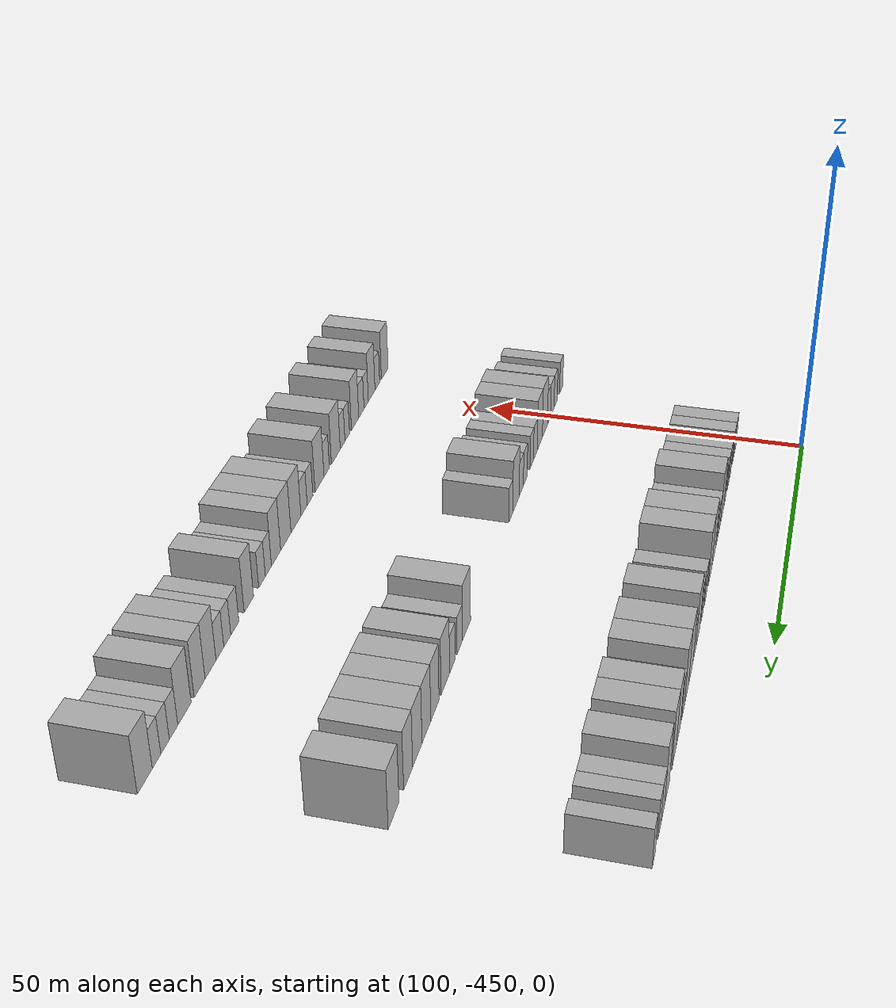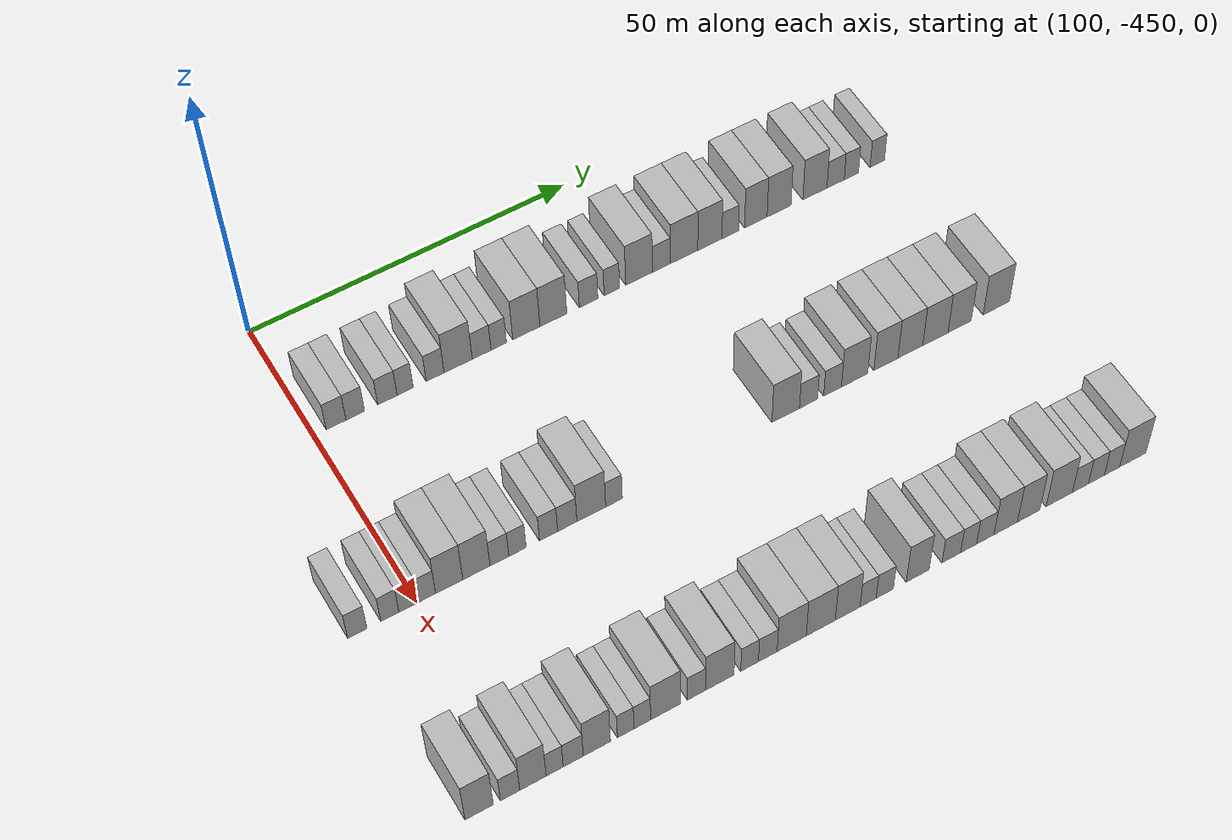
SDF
<sdf version="1.6">
 <world name="default">
  <model name="building_667">
   <static>1</static>
   <pose>115.0000 -446.6133 0 0.000000 0.000000 0.000000</pose>
   <link name="link">
    <pose>0 0 3.00 0 0 0</pose>
    <collision name="collision"><geometry><box><size>10.0000 2.9909 6.0000</size></box></geometry></collision>
    <visual name="visual">
     <cast_shadows>0</cast_shadows>
     <geometry><box><size>10.0000 2.9909 6.0000</size></box></geometry>
     <material>
      <script>
       <uri>model://HANNAS_wall/materials/scripts</uri>
       <uri>model://HANNAS_wall/materials/textures</uri>
       <name>vrc/HANNAS_wall</name>
      </script>
     </material>
    </visual>
   </link>
  </model>
  <model name="building_668">
   <static>1</static>
   <pose>115.0000 -443.7069 0 0.000000 0.000000 0.000000</pose>
   <link name="link">
    <pose>0 0 3.00 0 0 0</pose>
    <collision name="collision"><geometry><box><size>10.0000 2.8218 6.0000</size></box></geometry></collision>
    <visual name="visual">
     <cast_shadows>0</cast_shadows>
     <geometry><box><size>10.0000 2.8218 6.0000</size></box></geometry>
     <material>
      <script>
       <uri>model://HANNAS_wall/materials/scripts</uri>
       <uri>model://HANNAS_wall/materials/textures</uri>
       <name>vrc/HANNAS_wall</name>
      </script>
     </material>
    </visual>
   </link>
  </model>
  <model name="building_669">
   <static>1</static>
   <pose>115.0000 -438.8084 0 0.000000 0.000000 0.000000</pose>
   <link name="link">
    <pose>0 0 3.00 0 0 0</pose>
    <collision name="collision"><geometry><box><size>10.0000 2.9753 6.0000</size></box></geometry></collision>
    <visual name="visual">
     <cast_shadows>0</cast_shadows>
     <geometry><box><size>10.0000 2.9753 6.0000</size></box></geometry>
     <material>
      <script>
       <uri>model://HANNAS_wall/materials/scripts</uri>
       <uri>model://HANNAS_wall/materials/textures</uri>
       <name>vrc/HANNAS_wall</name>
      </script>
     </material>
    </visual>
   </link>
  </model>
  <model name="building_670">
   <static>1</static>
   <pose>115.0000 -436.0837 0 0.000000 0.000000 0.000000</pose>
   <link name="link">
    <pose>0 0 3.00 0 0 0</pose>
    <collision name="collision"><geometry><box><size>10.0000 2.4739 6.0000</size></box></geometry></collision>
    <visual name="visual">
     <cast_shadows>0</cast_shadows>
     <geometry><box><size>10.0000 2.4739 6.0000</size></box></geometry>
     <material>
      <script>
       <uri>model://HANNAS_wall/materials/scripts</uri>
       <uri>model://HANNAS_wall/materials/textures</uri>
       <name>vrc/HANNAS_wall</name>
      </script>
     </material>
    </visual>
   </link>
  </model>
  <model name="building_671">
   <static>1</static>
   <pose>115.0000 -431.4646 0 0.000000 0.000000 0.000000</pose>
   <link name="link">
    <pose>0 0 3.00 0 0 0</pose>
    <collision name="collision"><geometry><box><size>10.0000 2.7643 6.0000</size></box></geometry></collision>
    <visual name="visual">
     <cast_shadows>0</cast_shadows>
     <geometry><box><size>10.0000 2.7643 6.0000</size></box></geometry>
     <material>
      <script>
       <uri>model://HANNAS_wall/materials/scripts</uri>
       <uri>model://HANNAS_wall/materials/textures</uri>
       <name>vrc/HANNAS_wall</name>
      </script>
     </material>
    </visual>
   </link>
  </model>
  <model name="building_672">
   <static>1</static>
   <pose>115.0000 -427.8878 0 0.000000 0.000000 0.000000</pose>
   <link name="link">
    <pose>0 0 4.50 0 0 0</pose>
    <collision name="collision"><geometry><box><size>10.0000 4.3893 9.0000</size></box></geometry></collision>
    <visual name="visual">
     <cast_shadows>0</cast_shadows>
     <geometry><box><size>10.0000 4.3893 9.0000</size></box></geometry>
     <material>
      <script>
       <uri>model://HANNAS_wall/materials/scripts</uri>
       <uri>model://HANNAS_wall/materials/textures</uri>
       <name>vrc/HANNAS_wall</name>
      </script>
     </material>
    </visual>
   </link>
  </model>
  <model name="building_673">
   <static>1</static>
   <pose>115.0000 -424.2238 0 0.000000 0.000000 0.000000</pose>
   <link name="link">
    <pose>0 0 3.00 0 0 0</pose>
    <collision name="collision"><geometry><box><size>10.0000 2.9389 6.0000</size></box></geometry></collision>
    <visual name="visual">
     <cast_shadows>0</cast_shadows>
     <geometry><box><size>10.0000 2.9389 6.0000</size></box></geometry>
     <material>
      <script>
       <uri>model://HANNAS_wall/materials/scripts</uri>
       <uri>model://HANNAS_wall/materials/textures</uri>
       <name>vrc/HANNAS_wall</name>
      </script>
     </material>
    </visual>
   </link>
  </model>
  <model name="building_674">
   <static>1</static>
   <pose>115.0000 -421.5480 0 0.000000 0.000000 0.000000</pose>
   <link name="link">
    <pose>0 0 3.00 0 0 0</pose>
    <collision name="collision"><geometry><box><size>10.0000 2.4127 6.0000</size></box></geometry></collision>
    <visual name="visual">
     <cast_shadows>0</cast_shadows>
     <geometry><box><size>10.0000 2.4127 6.0000</size></box></geometry>
     <material>
      <script>
       <uri>model://HANNAS_wall/materials/scripts</uri>
       <uri>model://HANNAS_wall/materials/textures</uri>
       <name>vrc/HANNAS_wall</name>
      </script>
     </material>
    </visual>
   </link>
  </model>
  <model name="building_675">
   <static>1</static>
   <pose>115.0000 -417.1871 0 0.000000 0.000000 0.000000</pose>
   <link name="link">
    <pose>0 0 4.50 0 0 0</pose>
    <collision name="collision"><geometry><box><size>10.0000 4.3090 9.0000</size></box></geometry></collision>
    <visual name="visual">
     <cast_shadows>0</cast_shadows>
     <geometry><box><size>10.0000 4.3090 9.0000</size></box></geometry>
     <material>
      <script>
       <uri>model://HANNAS_wall/materials/scripts</uri>
       <uri>model://HANNAS_wall/materials/textures</uri>
       <name>vrc/HANNAS_wall</name>
      </script>
     </material>
    </visual>
   </link>
  </model>
  <model name="building_676">
   <static>1</static>
   <pose>115.0000 -412.8938 0 0.000000 0.000000 0.000000</pose>
   <link name="link">
    <pose>0 0 4.50 0 0 0</pose>
    <collision name="collision"><geometry><box><size>10.0000 4.2776 9.0000</size></box></geometry></collision>
    <visual name="visual">
     <cast_shadows>0</cast_shadows>
     <geometry><box><size>10.0000 4.2776 9.0000</size></box></geometry>
     <material>
      <script>
       <uri>model://HANNAS_wall/materials/scripts</uri>
       <uri>model://HANNAS_wall/materials/textures</uri>
       <name>vrc/HANNAS_wall</name>
      </script>
     </material>
    </visual>
   </link>
  </model>
  <model name="building_677">
   <static>1</static>
   <pose>115.0000 -407.2582 0 0.000000 0.000000 0.000000</pose>
   <link name="link">
    <pose>0 0 3.00 0 0 0</pose>
    <collision name="collision"><geometry><box><size>10.0000 2.9936 6.0000</size></box></geometry></collision>
    <visual name="visual">
     <cast_shadows>0</cast_shadows>
     <geometry><box><size>10.0000 2.9936 6.0000</size></box></geometry>
     <material>
      <script>
       <uri>model://HANNAS_wall/materials/scripts</uri>
       <uri>model://HANNAS_wall/materials/textures</uri>
       <name>vrc/HANNAS_wall</name>
      </script>
     </material>
    </visual>
   </link>
  </model>
  <model name="building_678">
   <static>1</static>
   <pose>115.0000 -403.5093 0 0.000000 0.000000 0.000000</pose>
   <link name="link">
    <pose>0 0 3.00 0 0 0</pose>
    <collision name="collision"><geometry><box><size>10.0000 2.5041 6.0000</size></box></geometry></collision>
    <visual name="visual">
     <cast_shadows>0</cast_shadows>
     <geometry><box><size>10.0000 2.5041 6.0000</size></box></geometry>
     <material>
      <script>
       <uri>model://HANNAS_wall/materials/scripts</uri>
       <uri>model://HANNAS_wall/materials/textures</uri>
       <name>vrc/HANNAS_wall</name>
      </script>
     </material>
    </visual>
   </link>
  </model>
  <model name="building_679">
   <static>1</static>
   <pose>115.0000 -399.0674 0 0.000000 0.000000 0.000000</pose>
   <link name="link">
    <pose>0 0 4.50 0 0 0</pose>
    <collision name="collision"><geometry><box><size>10.0000 4.3798 9.0000</size></box></geometry></collision>
    <visual name="visual">
     <cast_shadows>0</cast_shadows>
     <geometry><box><size>10.0000 4.3798 9.0000</size></box></geometry>
     <material>
      <script>
       <uri>model://HANNAS_wall/materials/scripts</uri>
       <uri>model://HANNAS_wall/materials/textures</uri>
       <name>vrc/HANNAS_wall</name>
      </script>
     </material>
    </visual>
   </link>
  </model>
  <model name="building_680">
   <static>1</static>
   <pose>115.0000 -395.4163 0 0.000000 0.000000 0.000000</pose>
   <link name="link">
    <pose>0 0 3.00 0 0 0</pose>
    <collision name="collision"><geometry><box><size>10.0000 2.9223 6.0000</size></box></geometry></collision>
    <visual name="visual">
     <cast_shadows>0</cast_shadows>
     <geometry><box><size>10.0000 2.9223 6.0000</size></box></geometry>
     <material>
      <script>
       <uri>model://HANNAS_wall/materials/scripts</uri>
       <uri>model://HANNAS_wall/materials/textures</uri>
       <name>vrc/HANNAS_wall</name>
      </script>
     </material>
    </visual>
   </link>
  </model>
  <model name="building_681">
   <static>1</static>
   <pose>115.0000 -391.7129 0 0.000000 0.000000 0.000000</pose>
   <link name="link">
    <pose>0 0 4.50 0 0 0</pose>
    <collision name="collision"><geometry><box><size>10.0000 4.4847 9.0000</size></box></geometry></collision>
    <visual name="visual">
     <cast_shadows>0</cast_shadows>
     <geometry><box><size>10.0000 4.4847 9.0000</size></box></geometry>
     <material>
      <script>
       <uri>model://HANNAS_wall/materials/scripts</uri>
       <uri>model://HANNAS_wall/materials/textures</uri>
       <name>vrc/HANNAS_wall</name>
      </script>
     </material>
    </visual>
   </link>
  </model>
  <model name="building_682">
   <static>1</static>
   <pose>115.0000 -387.4580 0 0.000000 0.000000 0.000000</pose>
   <link name="link">
    <pose>0 0 4.50 0 0 0</pose>
    <collision name="collision"><geometry><box><size>10.0000 4.0252 9.0000</size></box></geometry></collision>
    <visual name="visual">
     <cast_shadows>0</cast_shadows>
     <geometry><box><size>10.0000 4.0252 9.0000</size></box></geometry>
     <material>
      <script>
       <uri>model://HANNAS_wall/materials/scripts</uri>
       <uri>model://HANNAS_wall/materials/textures</uri>
       <name>vrc/HANNAS_wall</name>
      </script>
     </material>
    </visual>
   </link>
  </model>
  <model name="building_683">
   <static>1</static>
   <pose>115.0000 -384.0643 0 0.000000 0.000000 0.000000</pose>
   <link name="link">
    <pose>0 0 3.00 0 0 0</pose>
    <collision name="collision"><geometry><box><size>10.0000 2.7622 6.0000</size></box></geometry></collision>
    <visual name="visual">
     <cast_shadows>0</cast_shadows>
     <geometry><box><size>10.0000 2.7622 6.0000</size></box></geometry>
     <material>
      <script>
       <uri>model://HANNAS_wall/materials/scripts</uri>
       <uri>model://HANNAS_wall/materials/textures</uri>
       <name>vrc/HANNAS_wall</name>
      </script>
     </material>
    </visual>
   </link>
  </model>
  <model name="building_684">
   <static>1</static>
   <pose>115.0000 -379.7907 0 0.000000 0.000000 0.000000</pose>
   <link name="link">
    <pose>0 0 4.50 0 0 0</pose>
    <collision name="collision"><geometry><box><size>10.0000 3.7850 9.0000</size></box></geometry></collision>
    <visual name="visual">
     <cast_shadows>0</cast_shadows>
     <geometry><box><size>10.0000 3.7850 9.0000</size></box></geometry>
     <material>
      <script>
       <uri>model://HANNAS_wall/materials/scripts</uri>
       <uri>model://HANNAS_wall/materials/textures</uri>
       <name>vrc/HANNAS_wall</name>
      </script>
     </material>
    </visual>
   </link>
  </model>
  <model name="building_685">
   <static>1</static>
   <pose>115.0000 -375.8814 0 0.000000 0.000000 0.000000</pose>
   <link name="link">
    <pose>0 0 4.50 0 0 0</pose>
    <collision name="collision"><geometry><box><size>10.0000 4.0336 9.0000</size></box></geometry></collision>
    <visual name="visual">
     <cast_shadows>0</cast_shadows>
     <geometry><box><size>10.0000 4.0336 9.0000</size></box></geometry>
     <material>
      <script>
       <uri>model://HANNAS_wall/materials/scripts</uri>
       <uri>model://HANNAS_wall/materials/textures</uri>
       <name>vrc/HANNAS_wall</name>
      </script>
     </material>
    </visual>
   </link>
  </model>
  <model name="building_686">
   <static>1</static>
   <pose>115.0000 -369.8110 0 0.000000 0.000000 0.000000</pose>
   <link name="link">
    <pose>0 0 4.50 0 0 0</pose>
    <collision name="collision"><geometry><box><size>10.0000 4.1072 9.0000</size></box></geometry></collision>
    <visual name="visual">
     <cast_shadows>0</cast_shadows>
     <geometry><box><size>10.0000 4.1072 9.0000</size></box></geometry>
     <material>
      <script>
       <uri>model://HANNAS_wall/materials/scripts</uri>
       <uri>model://HANNAS_wall/materials/textures</uri>
       <name>vrc/HANNAS_wall</name>
      </script>
     </material>
    </visual>
   </link>
  </model>
  <model name="building_687">
   <static>1</static>
   <pose>115.0000 -366.2818 0 0.000000 0.000000 0.000000</pose>
   <link name="link">
    <pose>0 0 3.00 0 0 0</pose>
    <collision name="collision"><geometry><box><size>10.0000 2.9512 6.0000</size></box></geometry></collision>
    <visual name="visual">
     <cast_shadows>0</cast_shadows>
     <geometry><box><size>10.0000 2.9512 6.0000</size></box></geometry>
     <material>
      <script>
       <uri>model://HANNAS_wall/materials/scripts</uri>
       <uri>model://HANNAS_wall/materials/textures</uri>
       <name>vrc/HANNAS_wall</name>
      </script>
     </material>
    </visual>
   </link>
  </model>
  <model name="building_688">
   <static>1</static>
   <pose>115.0000 -363.5813 0 0.000000 0.000000 0.000000</pose>
   <link name="link">
    <pose>0 0 3.00 0 0 0</pose>
    <collision name="collision"><geometry><box><size>10.0000 2.4497 6.0000</size></box></geometry></collision>
    <visual name="visual">
     <cast_shadows>0</cast_shadows>
     <geometry><box><size>10.0000 2.4497 6.0000</size></box></geometry>
     <material>
      <script>
       <uri>model://HANNAS_wall/materials/scripts</uri>
       <uri>model://HANNAS_wall/materials/textures</uri>
       <name>vrc/HANNAS_wall</name>
      </script>
     </material>
    </visual>
   </link>
  </model>
  <model name="building_689">
   <static>1</static>
   <pose>115.0000 -359.1037 0 0.000000 0.000000 0.000000</pose>
   <link name="link">
    <pose>0 0 3.00 0 0 0</pose>
    <collision name="collision"><geometry><box><size>10.0000 2.5055 6.0000</size></box></geometry></collision>
    <visual name="visual">
     <cast_shadows>0</cast_shadows>
     <geometry><box><size>10.0000 2.5055 6.0000</size></box></geometry>
     <material>
      <script>
       <uri>model://HANNAS_wall/materials/scripts</uri>
       <uri>model://HANNAS_wall/materials/textures</uri>
       <name>vrc/HANNAS_wall</name>
      </script>
     </material>
    </visual>
   </link>
  </model>
  <model name="building_877">
   <static>1</static>
   <pose>145.0000 -458.6120 0 0.000000 0.000000 0.000000</pose>
   <link name="link">
    <pose>0 0 3.00 0 0 0</pose>
    <collision name="collision"><geometry><box><size>10.0000 2.7760 6.0000</size></box></geometry></collision>
    <visual name="visual">
     <cast_shadows>0</cast_shadows>
     <geometry><box><size>10.0000 2.7760 6.0000</size></box></geometry>
     <material>
      <script>
       <uri>model://HANNAS_wall/materials/scripts</uri>
       <uri>model://HANNAS_wall/materials/textures</uri>
       <name>vrc/HANNAS_wall</name>
      </script>
     </material>
    </visual>
   </link>
  </model>
  <model name="building_878">
   <static>1</static>
   <pose>145.0000 -453.9033 0 0.000000 0.000000 0.000000</pose>
   <link name="link">
    <pose>0 0 3.00 0 0 0</pose>
    <collision name="collision"><geometry><box><size>10.0000 2.6414 6.0000</size></box></geometry></collision>
    <visual name="visual">
     <cast_shadows>0</cast_shadows>
     <geometry><box><size>10.0000 2.6414 6.0000</size></box></geometry>
     <material>
      <script>
       <uri>model://HANNAS_wall/materials/scripts</uri>
       <uri>model://HANNAS_wall/materials/textures</uri>
       <name>vrc/HANNAS_wall</name>
      </script>
     </material>
    </visual>
   </link>
  </model>
  <model name="building_879">
   <static>1</static>
   <pose>145.0000 -451.1702 0 0.000000 0.000000 0.000000</pose>
   <link name="link">
    <pose>0 0 3.00 0 0 0</pose>
    <collision name="collision"><geometry><box><size>10.0000 2.8250 6.0000</size></box></geometry></collision>
    <visual name="visual">
     <cast_shadows>0</cast_shadows>
     <geometry><box><size>10.0000 2.8250 6.0000</size></box></geometry>
     <material>
      <script>
       <uri>model://HANNAS_wall/materials/scripts</uri>
       <uri>model://HANNAS_wall/materials/textures</uri>
       <name>vrc/HANNAS_wall</name>
      </script>
     </material>
    </visual>
   </link>
  </model>
  <model name="building_880">
   <static>1</static>
   <pose>145.0000 -448.4952 0 0.000000 0.000000 0.000000</pose>
   <link name="link">
    <pose>0 0 3.00 0 0 0</pose>
    <collision name="collision"><geometry><box><size>10.0000 2.5249 6.0000</size></box></geometry></collision>
    <visual name="visual">
     <cast_shadows>0</cast_shadows>
     <geometry><box><size>10.0000 2.5249 6.0000</size></box></geometry>
     <material>
      <script>
       <uri>model://HANNAS_wall/materials/scripts</uri>
       <uri>model://HANNAS_wall/materials/textures</uri>
       <name>vrc/HANNAS_wall</name>
      </script>
     </material>
    </visual>
   </link>
  </model>
  <model name="building_881">
   <static>1</static>
   <pose>145.0000 -445.2301 0 0.000000 0.000000 0.000000</pose>
   <link name="link">
    <pose>0 0 4.50 0 0 0</pose>
    <collision name="collision"><geometry><box><size>10.0000 4.0053 9.0000</size></box></geometry></collision>
    <visual name="visual">
     <cast_shadows>0</cast_shadows>
     <geometry><box><size>10.0000 4.0053 9.0000</size></box></geometry>
     <material>
      <script>
       <uri>model://HANNAS_wall/materials/scripts</uri>
       <uri>model://HANNAS_wall/materials/textures</uri>
       <name>vrc/HANNAS_wall</name>
      </script>
     </material>
    </visual>
   </link>
  </model>
  <model name="building_882">
   <static>1</static>
   <pose>145.0000 -441.2121 0 0.000000 0.000000 0.000000</pose>
   <link name="link">
    <pose>0 0 4.50 0 0 0</pose>
    <collision name="collision"><geometry><box><size>10.0000 4.0306 9.0000</size></box></geometry></collision>
    <visual name="visual">
     <cast_shadows>0</cast_shadows>
     <geometry><box><size>10.0000 4.0306 9.0000</size></box></geometry>
     <material>
      <script>
       <uri>model://HANNAS_wall/materials/scripts</uri>
       <uri>model://HANNAS_wall/materials/textures</uri>
       <name>vrc/HANNAS_wall</name>
      </script>
     </material>
    </visual>
   </link>
  </model>
  <model name="building_883">
   <static>1</static>
   <pose>145.0000 -437.7953 0 0.000000 0.000000 0.000000</pose>
   <link name="link">
    <pose>0 0 3.00 0 0 0</pose>
    <collision name="collision"><geometry><box><size>10.0000 2.8030 6.0000</size></box></geometry></collision>
    <visual name="visual">
     <cast_shadows>0</cast_shadows>
     <geometry><box><size>10.0000 2.8030 6.0000</size></box></geometry>
     <material>
      <script>
       <uri>model://HANNAS_wall/materials/scripts</uri>
       <uri>model://HANNAS_wall/materials/textures</uri>
       <name>vrc/HANNAS_wall</name>
      </script>
     </material>
    </visual>
   </link>
  </model>
  <model name="building_884">
   <static>1</static>
   <pose>145.0000 -435.1029 0 0.000000 0.000000 0.000000</pose>
   <link name="link">
    <pose>0 0 3.00 0 0 0</pose>
    <collision name="collision"><geometry><box><size>10.0000 2.5817 6.0000</size></box></geometry></collision>
    <visual name="visual">
     <cast_shadows>0</cast_shadows>
     <geometry><box><size>10.0000 2.5817 6.0000</size></box></geometry>
     <material>
      <script>
       <uri>model://HANNAS_wall/materials/scripts</uri>
       <uri>model://HANNAS_wall/materials/textures</uri>
       <name>vrc/HANNAS_wall</name>
      </script>
     </material>
    </visual>
   </link>
  </model>
  <model name="building_885">
   <static>1</static>
   <pose>145.0000 -430.4379 0 0.000000 0.000000 0.000000</pose>
   <link name="link">
    <pose>0 0 3.00 0 0 0</pose>
    <collision name="collision"><geometry><box><size>10.0000 2.7483 6.0000</size></box></geometry></collision>
    <visual name="visual">
     <cast_shadows>0</cast_shadows>
     <geometry><box><size>10.0000 2.7483 6.0000</size></box></geometry>
     <material>
      <script>
       <uri>model://HANNAS_wall/materials/scripts</uri>
       <uri>model://HANNAS_wall/materials/textures</uri>
       <name>vrc/HANNAS_wall</name>
      </script>
     </material>
    </visual>
   </link>
  </model>
  <model name="building_886">
   <static>1</static>
   <pose>145.0000 -427.6041 0 0.000000 0.000000 0.000000</pose>
   <link name="link">
    <pose>0 0 3.00 0 0 0</pose>
    <collision name="collision"><geometry><box><size>10.0000 2.9193 6.0000</size></box></geometry></collision>
    <visual name="visual">
     <cast_shadows>0</cast_shadows>
     <geometry><box><size>10.0000 2.9193 6.0000</size></box></geometry>
     <material>
      <script>
       <uri>model://HANNAS_wall/materials/scripts</uri>
       <uri>model://HANNAS_wall/materials/textures</uri>
       <name>vrc/HANNAS_wall</name>
      </script>
     </material>
    </visual>
   </link>
  </model>
  <model name="building_887">
   <static>1</static>
   <pose>145.0000 -423.9547 0 0.000000 0.000000 0.000000</pose>
   <link name="link">
    <pose>0 0 4.50 0 0 0</pose>
    <collision name="collision"><geometry><box><size>10.0000 4.3796 9.0000</size></box></geometry></collision>
    <visual name="visual">
     <cast_shadows>0</cast_shadows>
     <geometry><box><size>10.0000 4.3796 9.0000</size></box></geometry>
     <material>
      <script>
       <uri>model://HANNAS_wall/materials/scripts</uri>
       <uri>model://HANNAS_wall/materials/textures</uri>
       <name>vrc/HANNAS_wall</name>
      </script>
     </material>
    </visual>
   </link>
  </model>
  <model name="building_888">
   <static>1</static>
   <pose>145.0000 -420.4860 0 0.000000 0.000000 0.000000</pose>
   <link name="link">
    <pose>0 0 3.00 0 0 0</pose>
    <collision name="collision"><geometry><box><size>10.0000 2.5579 6.0000</size></box></geometry></collision>
    <visual name="visual">
     <cast_shadows>0</cast_shadows>
     <geometry><box><size>10.0000 2.5579 6.0000</size></box></geometry>
     <material>
      <script>
       <uri>model://HANNAS_wall/materials/scripts</uri>
       <uri>model://HANNAS_wall/materials/textures</uri>
       <name>vrc/HANNAS_wall</name>
      </script>
     </material>
    </visual>
   </link>
  </model>
  <model name="building_889">
   <static>1</static>
   <pose>145.0000 -393.5855 0 0.000000 0.000000 0.000000</pose>
   <link name="link">
    <pose>0 0 4.50 0 0 0</pose>
    <collision name="collision"><geometry><box><size>10.0000 4.4144 9.0000</size></box></geometry></collision>
    <visual name="visual">
     <cast_shadows>0</cast_shadows>
     <geometry><box><size>10.0000 4.4144 9.0000</size></box></geometry>
     <material>
      <script>
       <uri>model://HANNAS_wall/materials/scripts</uri>
       <uri>model://HANNAS_wall/materials/textures</uri>
       <name>vrc/HANNAS_wall</name>
      </script>
     </material>
    </visual>
   </link>
  </model>
  <model name="building_890">
   <static>1</static>
   <pose>145.0000 -389.9294 0 0.000000 0.000000 0.000000</pose>
   <link name="link">
    <pose>0 0 3.00 0 0 0</pose>
    <collision name="collision"><geometry><box><size>10.0000 2.8977 6.0000</size></box></geometry></collision>
    <visual name="visual">
     <cast_shadows>0</cast_shadows>
     <geometry><box><size>10.0000 2.8977 6.0000</size></box></geometry>
     <material>
      <script>
       <uri>model://HANNAS_wall/materials/scripts</uri>
       <uri>model://HANNAS_wall/materials/textures</uri>
       <name>vrc/HANNAS_wall</name>
      </script>
     </material>
    </visual>
   </link>
  </model>
  <model name="building_891">
   <static>1</static>
   <pose>145.0000 -386.0430 0 0.000000 0.000000 0.000000</pose>
   <link name="link">
    <pose>0 0 3.00 0 0 0</pose>
    <collision name="collision"><geometry><box><size>10.0000 2.8752 6.0000</size></box></geometry></collision>
    <visual name="visual">
     <cast_shadows>0</cast_shadows>
     <geometry><box><size>10.0000 2.8752 6.0000</size></box></geometry>
     <material>
      <script>
       <uri>model://HANNAS_wall/materials/scripts</uri>
       <uri>model://HANNAS_wall/materials/textures</uri>
       <name>vrc/HANNAS_wall</name>
      </script>
     </material>
    </visual>
   </link>
  </model>
  <model name="building_892">
   <static>1</static>
   <pose>145.0000 -382.4583 0 0.000000 0.000000 0.000000</pose>
   <link name="link">
    <pose>0 0 4.50 0 0 0</pose>
    <collision name="collision"><geometry><box><size>10.0000 4.2940 9.0000</size></box></geometry></collision>
    <visual name="visual">
     <cast_shadows>0</cast_shadows>
     <geometry><box><size>10.0000 4.2940 9.0000</size></box></geometry>
     <material>
      <script>
       <uri>model://HANNAS_wall/materials/scripts</uri>
       <uri>model://HANNAS_wall/materials/textures</uri>
       <name>vrc/HANNAS_wall</name>
      </script>
     </material>
    </visual>
   </link>
  </model>
  <model name="building_893">
   <static>1</static>
   <pose>145.0000 -377.3349 0 0.000000 0.000000 0.000000</pose>
   <link name="link">
    <pose>0 0 4.50 0 0 0</pose>
    <collision name="collision"><geometry><box><size>10.0000 3.9529 9.0000</size></box></geometry></collision>
    <visual name="visual">
     <cast_shadows>0</cast_shadows>
     <geometry><box><size>10.0000 3.9529 9.0000</size></box></geometry>
     <material>
      <script>
       <uri>model://HANNAS_wall/materials/scripts</uri>
       <uri>model://HANNAS_wall/materials/textures</uri>
       <name>vrc/HANNAS_wall</name>
      </script>
     </material>
    </visual>
   </link>
  </model>
  <model name="building_894">
   <static>1</static>
   <pose>145.0000 -373.2987 0 0.000000 0.000000 0.000000</pose>
   <link name="link">
    <pose>0 0 4.50 0 0 0</pose>
    <collision name="collision"><geometry><box><size>10.0000 4.1195 9.0000</size></box></geometry></collision>
    <visual name="visual">
     <cast_shadows>0</cast_shadows>
     <geometry><box><size>10.0000 4.1195 9.0000</size></box></geometry>
     <material>
      <script>
       <uri>model://HANNAS_wall/materials/scripts</uri>
       <uri>model://HANNAS_wall/materials/textures</uri>
       <name>vrc/HANNAS_wall</name>
      </script>
     </material>
    </visual>
   </link>
  </model>
  <model name="building_895">
   <static>1</static>
   <pose>145.0000 -369.1376 0 0.000000 0.000000 0.000000</pose>
   <link name="link">
    <pose>0 0 4.50 0 0 0</pose>
    <collision name="collision"><geometry><box><size>10.0000 4.2028 9.0000</size></box></geometry></collision>
    <visual name="visual">
     <cast_shadows>0</cast_shadows>
     <geometry><box><size>10.0000 4.2028 9.0000</size></box></geometry>
     <material>
      <script>
       <uri>model://HANNAS_wall/materials/scripts</uri>
       <uri>model://HANNAS_wall/materials/textures</uri>
       <name>vrc/HANNAS_wall</name>
      </script>
     </material>
    </visual>
   </link>
  </model>
  <model name="building_896">
   <static>1</static>
   <pose>145.0000 -365.0844 0 0.000000 0.000000 0.000000</pose>
   <link name="link">
    <pose>0 0 4.50 0 0 0</pose>
    <collision name="collision"><geometry><box><size>10.0000 3.9036 9.0000</size></box></geometry></collision>
    <visual name="visual">
     <cast_shadows>0</cast_shadows>
     <geometry><box><size>10.0000 3.9036 9.0000</size></box></geometry>
     <material>
      <script>
       <uri>model://HANNAS_wall/materials/scripts</uri>
       <uri>model://HANNAS_wall/materials/textures</uri>
       <name>vrc/HANNAS_wall</name>
      </script>
     </material>
    </visual>
   </link>
  </model>
  <model name="building_897">
   <static>1</static>
   <pose>145.0000 -358.9028 0 0.000000 0.000000 0.000000</pose>
   <link name="link">
    <pose>0 0 4.50 0 0 0</pose>
    <collision name="collision"><geometry><box><size>10.0000 4.4596 9.0000</size></box></geometry></collision>
    <visual name="visual">
     <cast_shadows>0</cast_shadows>
     <geometry><box><size>10.0000 4.4596 9.0000</size></box></geometry>
     <material>
      <script>
       <uri>model://HANNAS_wall/materials/scripts</uri>
       <uri>model://HANNAS_wall/materials/textures</uri>
       <name>vrc/HANNAS_wall</name>
      </script>
     </material>
    </visual>
   </link>
  </model>
  <model name="building_1102">
   <static>1</static>
   <pose>175.0000 -457.0167 0 0.000000 0.000000 0.000000</pose>
   <link name="link">
    <pose>0 0 4.50 0 0 0</pose>
    <collision name="collision"><geometry><box><size>10.0000 3.9665 9.0000</size></box></geometry></collision>
    <visual name="visual">
     <cast_shadows>0</cast_shadows>
     <geometry><box><size>10.0000 3.9665 9.0000</size></box></geometry>
     <material>
      <script>
       <uri>model://HANNAS_wall/materials/scripts</uri>
       <uri>model://HANNAS_wall/materials/textures</uri>
       <name>vrc/HANNAS_wall</name>
      </script>
     </material>
    </visual>
   </link>
  </model>
  <model name="building_1103">
   <static>1</static>
   <pose>175.0000 -452.6644 0 0.000000 0.000000 0.000000</pose>
   <link name="link">
    <pose>0 0 3.00 0 0 0</pose>
    <collision name="collision"><geometry><box><size>10.0000 2.7381 6.0000</size></box></geometry></collision>
    <visual name="visual">
     <cast_shadows>0</cast_shadows>
     <geometry><box><size>10.0000 2.7381 6.0000</size></box></geometry>
     <material>
      <script>
       <uri>model://HANNAS_wall/materials/scripts</uri>
       <uri>model://HANNAS_wall/materials/textures</uri>
       <name>vrc/HANNAS_wall</name>
      </script>
     </material>
    </visual>
   </link>
  </model>
  <model name="building_1104">
   <static>1</static>
   <pose>175.0000 -449.4256 0 0.000000 0.000000 0.000000</pose>
   <link name="link">
    <pose>0 0 4.50 0 0 0</pose>
    <collision name="collision"><geometry><box><size>10.0000 3.7395 9.0000</size></box></geometry></collision>
    <visual name="visual">
     <cast_shadows>0</cast_shadows>
     <geometry><box><size>10.0000 3.7395 9.0000</size></box></geometry>
     <material>
      <script>
       <uri>model://HANNAS_wall/materials/scripts</uri>
       <uri>model://HANNAS_wall/materials/textures</uri>
       <name>vrc/HANNAS_wall</name>
      </script>
     </material>
    </visual>
   </link>
  </model>
  <model name="building_1105">
   <static>1</static>
   <pose>175.0000 -446.3379 0 0.000000 0.000000 0.000000</pose>
   <link name="link">
    <pose>0 0 3.00 0 0 0</pose>
    <collision name="collision"><geometry><box><size>10.0000 2.4360 6.0000</size></box></geometry></collision>
    <visual name="visual">
     <cast_shadows>0</cast_shadows>
     <geometry><box><size>10.0000 2.4360 6.0000</size></box></geometry>
     <material>
      <script>
       <uri>model://HANNAS_wall/materials/scripts</uri>
       <uri>model://HANNAS_wall/materials/textures</uri>
       <name>vrc/HANNAS_wall</name>
      </script>
     </material>
    </visual>
   </link>
  </model>
  <model name="building_1106">
   <static>1</static>
   <pose>175.0000 -443.6791 0 0.000000 0.000000 0.000000</pose>
   <link name="link">
    <pose>0 0 3.00 0 0 0</pose>
    <collision name="collision"><geometry><box><size>10.0000 2.8816 6.0000</size></box></geometry></collision>
    <visual name="visual">
     <cast_shadows>0</cast_shadows>
     <geometry><box><size>10.0000 2.8816 6.0000</size></box></geometry>
     <material>
      <script>
       <uri>model://HANNAS_wall/materials/scripts</uri>
       <uri>model://HANNAS_wall/materials/textures</uri>
       <name>vrc/HANNAS_wall</name>
      </script>
     </material>
    </visual>
   </link>
  </model>
  <model name="building_1107">
   <static>1</static>
   <pose>175.0000 -440.2790 0 0.000000 0.000000 0.000000</pose>
   <link name="link">
    <pose>0 0 4.50 0 0 0</pose>
    <collision name="collision"><geometry><box><size>10.0000 3.9187 9.0000</size></box></geometry></collision>
    <visual name="visual">
     <cast_shadows>0</cast_shadows>
     <geometry><box><size>10.0000 3.9187 9.0000</size></box></geometry>
     <material>
      <script>
       <uri>model://HANNAS_wall/materials/scripts</uri>
       <uri>model://HANNAS_wall/materials/textures</uri>
       <name>vrc/HANNAS_wall</name>
      </script>
     </material>
    </visual>
   </link>
  </model>
  <model name="building_1108">
   <static>1</static>
   <pose>175.0000 -436.1120 0 0.000000 0.000000 0.000000</pose>
   <link name="link">
    <pose>0 0 3.00 0 0 0</pose>
    <collision name="collision"><geometry><box><size>10.0000 2.4153 6.0000</size></box></geometry></collision>
    <visual name="visual">
     <cast_shadows>0</cast_shadows>
     <geometry><box><size>10.0000 2.4153 6.0000</size></box></geometry>
     <material>
      <script>
       <uri>model://HANNAS_wall/materials/scripts</uri>
       <uri>model://HANNAS_wall/materials/textures</uri>
       <name>vrc/HANNAS_wall</name>
      </script>
     </material>
    </visual>
   </link>
  </model>
  <model name="building_1109">
   <static>1</static>
   <pose>175.0000 -433.6907 0 0.000000 0.000000 0.000000</pose>
   <link name="link">
    <pose>0 0 3.00 0 0 0</pose>
    <collision name="collision"><geometry><box><size>10.0000 2.4273 6.0000</size></box></geometry></collision>
    <visual name="visual">
     <cast_shadows>0</cast_shadows>
     <geometry><box><size>10.0000 2.4273 6.0000</size></box></geometry>
     <material>
      <script>
       <uri>model://HANNAS_wall/materials/scripts</uri>
       <uri>model://HANNAS_wall/materials/textures</uri>
       <name>vrc/HANNAS_wall</name>
      </script>
     </material>
    </visual>
   </link>
  </model>
  <model name="building_1110">
   <static>1</static>
   <pose>175.0000 -430.2819 0 0.000000 0.000000 0.000000</pose>
   <link name="link">
    <pose>0 0 4.50 0 0 0</pose>
    <collision name="collision"><geometry><box><size>10.0000 4.3904 9.0000</size></box></geometry></collision>
    <visual name="visual">
     <cast_shadows>0</cast_shadows>
     <geometry><box><size>10.0000 4.3904 9.0000</size></box></geometry>
     <material>
      <script>
       <uri>model://HANNAS_wall/materials/scripts</uri>
       <uri>model://HANNAS_wall/materials/textures</uri>
       <name>vrc/HANNAS_wall</name>
      </script>
     </material>
    </visual>
   </link>
  </model>
  <model name="building_1111">
   <static>1</static>
   <pose>175.0000 -425.7563 0 0.000000 0.000000 0.000000</pose>
   <link name="link">
    <pose>0 0 3.00 0 0 0</pose>
    <collision name="collision"><geometry><box><size>10.0000 2.6607 6.0000</size></box></geometry></collision>
    <visual name="visual">
     <cast_shadows>0</cast_shadows>
     <geometry><box><size>10.0000 2.6607 6.0000</size></box></geometry>
     <material>
      <script>
       <uri>model://HANNAS_wall/materials/scripts</uri>
       <uri>model://HANNAS_wall/materials/textures</uri>
       <name>vrc/HANNAS_wall</name>
      </script>
     </material>
    </visual>
   </link>
  </model>
  <model name="building_1112">
   <static>1</static>
   <pose>175.0000 -422.2961 0 0.000000 0.000000 0.000000</pose>
   <link name="link">
    <pose>0 0 4.50 0 0 0</pose>
    <collision name="collision"><geometry><box><size>10.0000 4.2599 9.0000</size></box></geometry></collision>
    <visual name="visual">
     <cast_shadows>0</cast_shadows>
     <geometry><box><size>10.0000 4.2599 9.0000</size></box></geometry>
     <material>
      <script>
       <uri>model://HANNAS_wall/materials/scripts</uri>
       <uri>model://HANNAS_wall/materials/textures</uri>
       <name>vrc/HANNAS_wall</name>
      </script>
     </material>
    </visual>
   </link>
  </model>
  <model name="building_1113">
   <static>1</static>
   <pose>175.0000 -417.8384 0 0.000000 0.000000 0.000000</pose>
   <link name="link">
    <pose>0 0 3.00 0 0 0</pose>
    <collision name="collision"><geometry><box><size>10.0000 2.6554 6.0000</size></box></geometry></collision>
    <visual name="visual">
     <cast_shadows>0</cast_shadows>
     <geometry><box><size>10.0000 2.6554 6.0000</size></box></geometry>
     <material>
      <script>
       <uri>model://HANNAS_wall/materials/scripts</uri>
       <uri>model://HANNAS_wall/materials/textures</uri>
       <name>vrc/HANNAS_wall</name>
      </script>
     </material>
    </visual>
   </link>
  </model>
  <model name="building_1114">
   <static>1</static>
   <pose>175.0000 -415.1041 0 0.000000 0.000000 0.000000</pose>
   <link name="link">
    <pose>0 0 3.00 0 0 0</pose>
    <collision name="collision"><geometry><box><size>10.0000 2.8132 6.0000</size></box></geometry></collision>
    <visual name="visual">
     <cast_shadows>0</cast_shadows>
     <geometry><box><size>10.0000 2.8132 6.0000</size></box></geometry>
     <material>
      <script>
       <uri>model://HANNAS_wall/materials/scripts</uri>
       <uri>model://HANNAS_wall/materials/textures</uri>
       <name>vrc/HANNAS_wall</name>
      </script>
     </material>
    </visual>
   </link>
  </model>
  <model name="building_1115">
   <static>1</static>
   <pose>175.0000 -411.4946 0 0.000000 0.000000 0.000000</pose>
   <link name="link">
    <pose>0 0 4.50 0 0 0</pose>
    <collision name="collision"><geometry><box><size>10.0000 4.4057 9.0000</size></box></geometry></collision>
    <visual name="visual">
     <cast_shadows>0</cast_shadows>
     <geometry><box><size>10.0000 4.4057 9.0000</size></box></geometry>
     <material>
      <script>
       <uri>model://HANNAS_wall/materials/scripts</uri>
       <uri>model://HANNAS_wall/materials/textures</uri>
       <name>vrc/HANNAS_wall</name>
      </script>
     </material>
    </visual>
   </link>
  </model>
  <model name="building_1116">
   <static>1</static>
   <pose>175.0000 -407.0718 0 0.000000 0.000000 0.000000</pose>
   <link name="link">
    <pose>0 0 4.50 0 0 0</pose>
    <collision name="collision"><geometry><box><size>10.0000 4.4399 9.0000</size></box></geometry></collision>
    <visual name="visual">
     <cast_shadows>0</cast_shadows>
     <geometry><box><size>10.0000 4.4399 9.0000</size></box></geometry>
     <material>
      <script>
       <uri>model://HANNAS_wall/materials/scripts</uri>
       <uri>model://HANNAS_wall/materials/textures</uri>
       <name>vrc/HANNAS_wall</name>
      </script>
     </material>
    </visual>
   </link>
  </model>
  <model name="building_1117">
   <static>1</static>
   <pose>175.0000 -402.9468 0 0.000000 0.000000 0.000000</pose>
   <link name="link">
    <pose>0 0 4.50 0 0 0</pose>
    <collision name="collision"><geometry><box><size>10.0000 3.8101 9.0000</size></box></geometry></collision>
    <visual name="visual">
     <cast_shadows>0</cast_shadows>
     <geometry><box><size>10.0000 3.8101 9.0000</size></box></geometry>
     <material>
      <script>
       <uri>model://HANNAS_wall/materials/scripts</uri>
       <uri>model://HANNAS_wall/materials/textures</uri>
       <name>vrc/HANNAS_wall</name>
      </script>
     </material>
    </visual>
   </link>
  </model>
  <model name="building_1118">
   <static>1</static>
   <pose>175.0000 -399.7985 0 0.000000 0.000000 0.000000</pose>
   <link name="link">
    <pose>0 0 3.00 0 0 0</pose>
    <collision name="collision"><geometry><box><size>10.0000 2.4866 6.0000</size></box></geometry></collision>
    <visual name="visual">
     <cast_shadows>0</cast_shadows>
     <geometry><box><size>10.0000 2.4866 6.0000</size></box></geometry>
     <material>
      <script>
       <uri>model://HANNAS_wall/materials/scripts</uri>
       <uri>model://HANNAS_wall/materials/textures</uri>
       <name>vrc/HANNAS_wall</name>
      </script>
     </material>
    </visual>
   </link>
  </model>
  <model name="building_1119">
   <static>1</static>
   <pose>175.0000 -397.2212 0 0.000000 0.000000 0.000000</pose>
   <link name="link">
    <pose>0 0 3.00 0 0 0</pose>
    <collision name="collision"><geometry><box><size>10.0000 2.6679 6.0000</size></box></geometry></collision>
    <visual name="visual">
     <cast_shadows>0</cast_shadows>
     <geometry><box><size>10.0000 2.6679 6.0000</size></box></geometry>
     <material>
      <script>
       <uri>model://HANNAS_wall/materials/scripts</uri>
       <uri>model://HANNAS_wall/materials/textures</uri>
       <name>vrc/HANNAS_wall</name>
      </script>
     </material>
    </visual>
   </link>
  </model>
  <model name="building_1120">
   <static>1</static>
   <pose>175.0000 -392.0844 0 0.000000 0.000000 0.000000</pose>
   <link name="link">
    <pose>0 0 4.50 0 0 0</pose>
    <collision name="collision"><geometry><box><size>10.0000 3.6057 9.0000</size></box></geometry></collision>
    <visual name="visual">
     <cast_shadows>0</cast_shadows>
     <geometry><box><size>10.0000 3.6057 9.0000</size></box></geometry>
     <material>
      <script>
       <uri>model://HANNAS_wall/materials/scripts</uri>
       <uri>model://HANNAS_wall/materials/textures</uri>
       <name>vrc/HANNAS_wall</name>
      </script>
     </material>
    </visual>
   </link>
  </model>
  <model name="building_1121">
   <static>1</static>
   <pose>175.0000 -386.8033 0 0.000000 0.000000 0.000000</pose>
   <link name="link">
    <pose>0 0 3.00 0 0 0</pose>
    <collision name="collision"><geometry><box><size>10.0000 2.9564 6.0000</size></box></geometry></collision>
    <visual name="visual">
     <cast_shadows>0</cast_shadows>
     <geometry><box><size>10.0000 2.9564 6.0000</size></box></geometry>
     <material>
      <script>
       <uri>model://HANNAS_wall/materials/scripts</uri>
       <uri>model://HANNAS_wall/materials/textures</uri>
       <name>vrc/HANNAS_wall</name>
      </script>
     </material>
    </visual>
   </link>
  </model>
  <model name="building_1122">
   <static>1</static>
   <pose>175.0000 -384.0592 0 0.000000 0.000000 0.000000</pose>
   <link name="link">
    <pose>0 0 3.00 0 0 0</pose>
    <collision name="collision"><geometry><box><size>10.0000 2.5318 6.0000</size></box></geometry></collision>
    <visual name="visual">
     <cast_shadows>0</cast_shadows>
     <geometry><box><size>10.0000 2.5318 6.0000</size></box></geometry>
     <material>
      <script>
       <uri>model://HANNAS_wall/materials/scripts</uri>
       <uri>model://HANNAS_wall/materials/textures</uri>
       <name>vrc/HANNAS_wall</name>
      </script>
     </material>
    </visual>
   </link>
  </model>
  <model name="building_1123">
   <static>1</static>
   <pose>175.0000 -381.4103 0 0.000000 0.000000 0.000000</pose>
   <link name="link">
    <pose>0 0 3.00 0 0 0</pose>
    <collision name="collision"><geometry><box><size>10.0000 2.7662 6.0000</size></box></geometry></collision>
    <visual name="visual">
     <cast_shadows>0</cast_shadows>
     <geometry><box><size>10.0000 2.7662 6.0000</size></box></geometry>
     <material>
      <script>
       <uri>model://HANNAS_wall/materials/scripts</uri>
       <uri>model://HANNAS_wall/materials/textures</uri>
       <name>vrc/HANNAS_wall</name>
      </script>
     </material>
    </visual>
   </link>
  </model>
  <model name="building_1124">
   <static>1</static>
   <pose>175.0000 -378.1456 0 0.000000 0.000000 0.000000</pose>
   <link name="link">
    <pose>0 0 4.50 0 0 0</pose>
    <collision name="collision"><geometry><box><size>10.0000 3.7631 9.0000</size></box></geometry></collision>
    <visual name="visual">
     <cast_shadows>0</cast_shadows>
     <geometry><box><size>10.0000 3.7631 9.0000</size></box></geometry>
     <material>
      <script>
       <uri>model://HANNAS_wall/materials/scripts</uri>
       <uri>model://HANNAS_wall/materials/textures</uri>
       <name>vrc/HANNAS_wall</name>
      </script>
     </material>
    </visual>
   </link>
  </model>
  <model name="building_1125">
   <static>1</static>
   <pose>175.0000 -374.4507 0 0.000000 0.000000 0.000000</pose>
   <link name="link">
    <pose>0 0 4.50 0 0 0</pose>
    <collision name="collision"><geometry><box><size>10.0000 3.6267 9.0000</size></box></geometry></collision>
    <visual name="visual">
     <cast_shadows>0</cast_shadows>
     <geometry><box><size>10.0000 3.6267 9.0000</size></box></geometry>
     <material>
      <script>
       <uri>model://HANNAS_wall/materials/scripts</uri>
       <uri>model://HANNAS_wall/materials/textures</uri>
       <name>vrc/HANNAS_wall</name>
      </script>
     </material>
    </visual>
   </link>
  </model>
  <model name="building_1126">
   <static>1</static>
   <pose>175.0000 -369.5027 0 0.000000 0.000000 0.000000</pose>
   <link name="link">
    <pose>0 0 4.50 0 0 0</pose>
    <collision name="collision"><geometry><box><size>10.0000 4.2693 9.0000</size></box></geometry></collision>
    <visual name="visual">
     <cast_shadows>0</cast_shadows>
     <geometry><box><size>10.0000 4.2693 9.0000</size></box></geometry>
     <material>
      <script>
       <uri>model://HANNAS_wall/materials/scripts</uri>
       <uri>model://HANNAS_wall/materials/textures</uri>
       <name>vrc/HANNAS_wall</name>
      </script>
     </material>
    </visual>
   </link>
  </model>
  <model name="building_1127">
   <static>1</static>
   <pose>175.0000 -366.0543 0 0.000000 0.000000 0.000000</pose>
   <link name="link">
    <pose>0 0 3.00 0 0 0</pose>
    <collision name="collision"><geometry><box><size>10.0000 2.6276 6.0000</size></box></geometry></collision>
    <visual name="visual">
     <cast_shadows>0</cast_shadows>
     <geometry><box><size>10.0000 2.6276 6.0000</size></box></geometry>
     <material>
      <script>
       <uri>model://HANNAS_wall/materials/scripts</uri>
       <uri>model://HANNAS_wall/materials/textures</uri>
       <name>vrc/HANNAS_wall</name>
      </script>
     </material>
    </visual>
   </link>
  </model>
  <model name="building_1128">
   <static>1</static>
   <pose>175.0000 -363.4342 0 0.000000 0.000000 0.000000</pose>
   <link name="link">
    <pose>0 0 3.00 0 0 0</pose>
    <collision name="collision"><geometry><box><size>10.0000 2.6126 6.0000</size></box></geometry></collision>
    <visual name="visual">
     <cast_shadows>0</cast_shadows>
     <geometry><box><size>10.0000 2.6126 6.0000</size></box></geometry>
     <material>
      <script>
       <uri>model://HANNAS_wall/materials/scripts</uri>
       <uri>model://HANNAS_wall/materials/textures</uri>
       <name>vrc/HANNAS_wall</name>
      </script>
     </material>
    </visual>
   </link>
  </model>
  <model name="building_1129">
   <static>1</static>
   <pose>175.0000 -360.8612 0 0.000000 0.000000 0.000000</pose>
   <link name="link">
    <pose>0 0 3.00 0 0 0</pose>
    <collision name="collision"><geometry><box><size>10.0000 2.5333 6.0000</size></box></geometry></collision>
    <visual name="visual">
     <cast_shadows>0</cast_shadows>
     <geometry><box><size>10.0000 2.5333 6.0000</size></box></geometry>
     <material>
      <script>
       <uri>model://HANNAS_wall/materials/scripts</uri>
       <uri>model://HANNAS_wall/materials/textures</uri>
       <name>vrc/HANNAS_wall</name>
      </script>
     </material>
    </visual>
   </link>
  </model>
  <model name="building_1130">
   <static>1</static>
   <pose>175.0000 -357.4176 0 0.000000 0.000000 0.000000</pose>
   <link name="link">
    <pose>0 0 4.50 0 0 0</pose>
    <collision name="collision"><geometry><box><size>10.0000 4.3540 9.0000</size></box></geometry></collision>
    <visual name="visual">
     <cast_shadows>0</cast_shadows>
     <geometry><box><size>10.0000 4.3540 9.0000</size></box></geometry>
     <material>
      <script>
       <uri>model://HANNAS_wall/materials/scripts</uri>
       <uri>model://HANNAS_wall/materials/textures</uri>
       <name>vrc/HANNAS_wall</name>
      </script>
     </material>
    </visual>
   </link>
  </model>
 </world>
</sdf>
